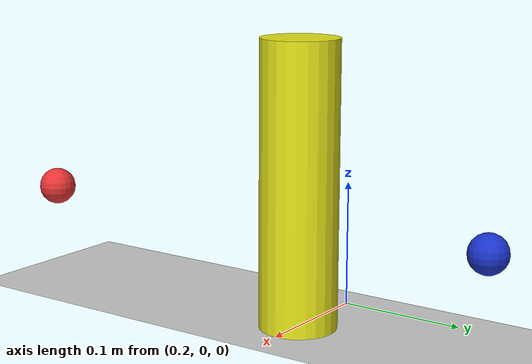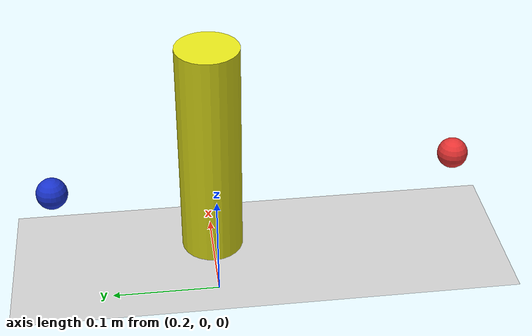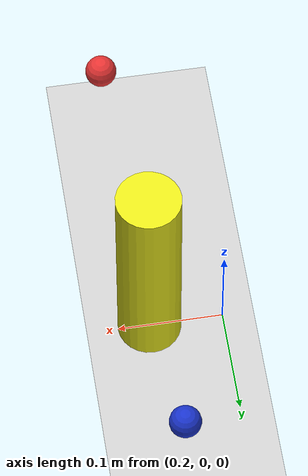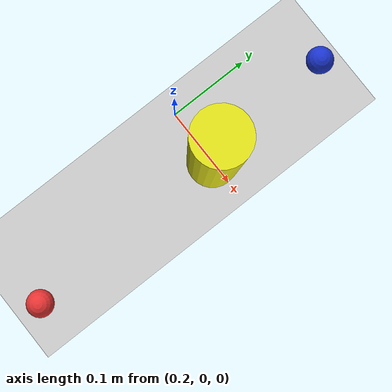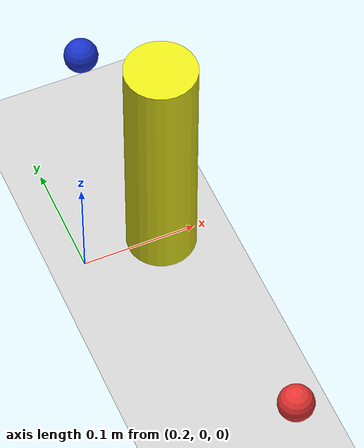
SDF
<sdf version="1.6">
 <world name="empty">
  <light name="sun" type="directional">
   <pose>0 0 10 0 -0 0</pose>
   <diffuse>0.8 0.8 0.8 1</diffuse>
   <specular>0.1 0.1 0.1 1</specular>
   <attenuation>
    <range>1000</range>
    <constant>0.9</constant>
    <linear>0.01</linear>
    <quadratic>0.001</quadratic>
   </attenuation>
   <direction>-0.5 0.5 -1</direction>
  </light>
  <model name="ground_plane">
   <static>1</static>
   <link name="link">
    <collision name="collision">
     <geometry><plane><normal>0 0 1</normal><size>100 100</size></plane></geometry>
     <surface><friction><ode><mu>100</mu><mu2>50</mu2></ode></friction></surface>
    </collision>
    <visual name="visual">
     <cast_shadows>0</cast_shadows>
     <geometry><plane><normal>0 0 1</normal><size>100 100</size></plane></geometry>
     <material>
      <script><uri>file://media/materials/scripts/gazebo.material</uri><name>Gazebo/Grey</name></script>
     </material>
    </visual>
   </link>
  </model>
  <physics name="default_physics" default="0" type="ode">
   <max_step_size>0.001</max_step_size>
   <real_time_factor>1</real_time_factor>
   <real_time_update_rate>1000</real_time_update_rate>
  </physics>
  <gravity>0 0 -9.81</gravity>
  <magnetic_field>6e-06 2.3e-05 -4.2e-05</magnetic_field>
  <atmosphere type="adiabatic"/>
  <scene><ambient>0.4 0.4 0.4 1</ambient><background>0.7 0.7 0.7 1</background><shadows>1</shadows></scene>
  <spherical_coordinates>
   <surface_model>EARTH_WGS84</surface_model>
   <latitude_deg>0</latitude_deg>
   <longitude_deg>0</longitude_deg>
   <elevation>0</elevation>
   <heading_deg>0</heading_deg>
  </spherical_coordinates>
  <model name="bottle_obstacle">
   <link name="link">
    <inertial>
     <mass>0.08</mass>
     <inertia><ixx>0.145833</ixx><ixy>0</ixy><ixz>0</ixz><iyy>0.145833</iyy><iyz>0</iyz><izz>0.125</izz></inertia>
    </inertial>
    <visual name="visual">
     <geometry><cylinder><radius>0.03</radius><length>0.22</length></cylinder></geometry>
     <material>
      <script><name>Gazebo/Grey</name><uri>file://media/materials/scripts/gazebo.material</uri></script>
      <shader type="pixel"><normal_map>__default__</normal_map></shader>
      <ambient>0.9 0.9 0.1 1</ambient>
      <diffuse>0.7 0.7 0.7 1</diffuse>
      <specular>0.01 0.01 0.01 1</specular>
      <emissive>0 0 0 1</emissive>
     </material>
    </visual>
    <collision name="collision">
     <geometry><cylinder><radius>0.03</radius><length>0.22</length></cylinder></geometry>
     <surface>
      <friction>
       <ode><mu>1</mu><mu2>1</mu2><fdir1>0 0 0</fdir1><slip1>0</slip1><slip2>0</slip2></ode>
       <torsional>
        <coefficient>1</coefficient>
        <patch_radius>0</patch_radius>
        <surface_radius>0</surface_radius>
        <use_patch_radius>1</use_patch_radius>
        <ode><slip>0</slip></ode>
       </torsional>
      </friction>
      <bounce><restitution_coefficient>0</restitution_coefficient><threshold>1e+06</threshold></bounce>
      <contact>
       <collide_without_contact>0</collide_without_contact>
       <collide_without_contact_bitmask>1</collide_without_contact_bitmask>
       <collide_bitmask>1</collide_bitmask>
       <ode>
        <soft_cfm>0</soft_cfm>
        <soft_erp>0.2</soft_erp>
        <kp>1e+13</kp>
        <kd>1</kd>
        <max_vel>0.01</max_vel>
        <min_depth>0</min_depth>
       </ode>
       <bullet>
        <split_impulse>1</split_impulse>
        <split_impulse_penetration_threshold>-0.01</split_impulse_penetration_threshold>
        <soft_cfm>0</soft_cfm>
        <soft_erp>0.2</soft_erp>
        <kp>1e+13</kp>
        <kd>1</kd>
       </bullet>
      </contact>
     </surface>
    </collision>
   </link>
   <static>0</static>
   <pose>0.27 0 0.109991 -1e-06 -2e-06 0</pose>
  </model>
  <model name="ring_position">
   <link name="link">
    <inertial>
     <mass>0.01</mass>
     <inertia><ixx>0.1</ixx><ixy>0</ixy><ixz>0</ixz><iyy>0.1</iyy><iyz>0</iyz><izz>0.1</izz></inertia>
    </inertial>
    <gravity>0</gravity>
    <visual name="visual">
     <geometry><sphere><radius>0.015</radius></sphere></geometry>
     <material>
      <script><name>Gazebo/Grey</name><uri>file://media/materials/scripts/gazebo.material</uri></script>
      <shader type="pixel"><normal_map>__default__</normal_map></shader>
      <ambient>0.9 0.2 0.2 1</ambient>
      <diffuse>0.7 0.7 0.7 1</diffuse>
      <specular>0.01 0.01 0.01 1</specular>
      <emissive>0 0 0 1</emissive>
     </material>
    </visual>
   </link>
   <static>0</static>
   <pose>0.28 -0.24 0.08 0 -0 0</pose>
  </model>
  <model name="way_point">
   <link name="link">
    <inertial>
     <mass>0.1</mass>
     <inertia><ixx>0.1</ixx><ixy>0</ixy><ixz>0</ixz><iyy>0.1</iyy><iyz>0</iyz><izz>0.1</izz></inertia>
    </inertial>
    <gravity>0</gravity>
    <visual name="visual">
     <geometry><sphere><radius>0.015</radius></sphere></geometry>
     <material>
      <script><name>Gazebo/Grey</name><uri>file://media/materials/scripts/gazebo.material</uri></script>
      <shader type="pixel"><normal_map>__default__</normal_map></shader>
      <ambient>0.1 0.2 0.8 1</ambient>
      <diffuse>0.7 0.7 0.7 1</diffuse>
      <specular>0.01 0.01 0.01 1</specular>
      <emissive>0 0 0 1</emissive>
     </material>
    </visual>
   </link>
   <static>0</static>
   <pose>0.26 0.15 0.08 0 -0 0</pose>
  </model>
 </world>
</sdf>
